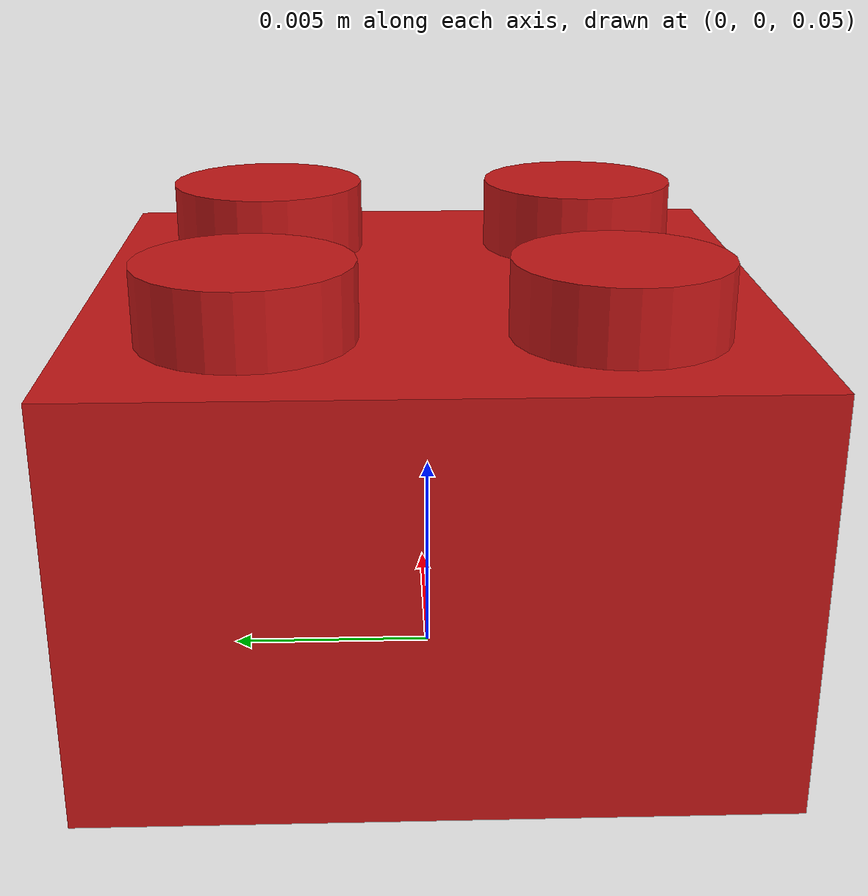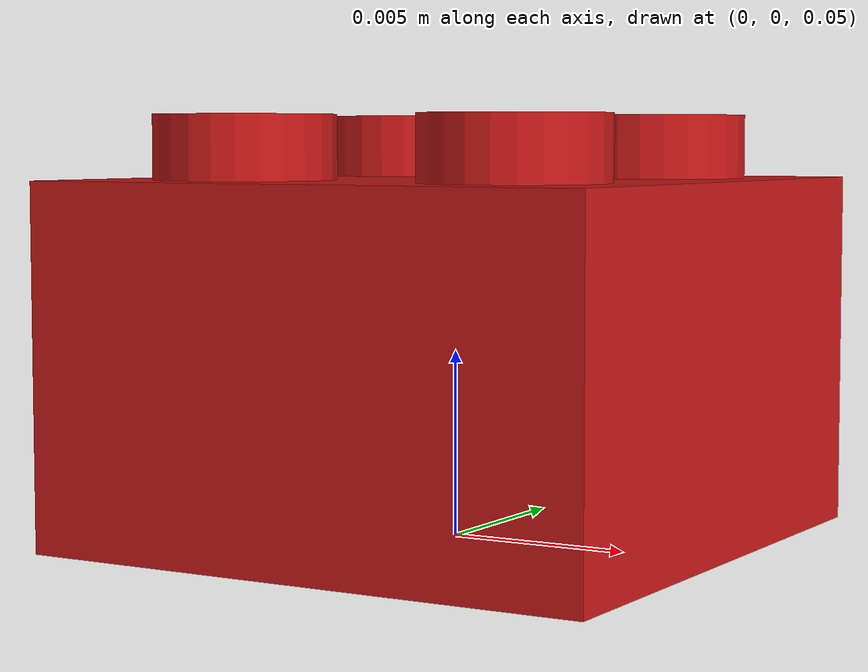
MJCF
<mujoco model="brick_2x2">
    <compiler inertiafromgeom="auto" angle="radian" />
    <option timestep="0.002" gravity="0 0 -9.81" integrator="implicitfast" cone="pyramidal" solver="Newton" iterations="80" ls_iterations="10" />
    <default>
        <default class="lego/stud">
            <geom contype="6" conaffinity="7" solref="0.003 1.0" solimp="0.97 0.995 0.001 0.5 4" friction="0.65 0.005 0.005" condim="4" />
        </default>
        <default class="lego/tube">
            <geom contype="4" conaffinity="4" solref="0.003 1.0" solimp="0.97 0.995 0.001 0.5 4" friction="0.65 0.005 0.005" condim="4" />
        </default>
        <default class="lego/brick_surface">
            <geom contype="2" conaffinity="3" solref="0.005 1.0" solimp="0.9 0.95 0.001 0.5 2" friction="0.4 0.005 0.002" condim="3" />
        </default>
        <default class="lego/baseplate">
            <geom contype="2" conaffinity="3" solref="0.005 1.0" solimp="0.9 0.95 0.001 0.5 2" friction="0.6 0.01 0.005" condim="3" />
        </default>
    </default>
    <worldbody>
        <light diffuse="0.8 0.8 0.8" pos="0 0 1" dir="0 0 -1" />
        <geom name="floor" type="plane" size="1 1 0.1" rgba="0.9 0.9 0.9 1" contype="1" conaffinity="1" />
        <body name="brick_2x2" pos="0 0 0.05">
            <freejoint name="brick_2x2_joint" />
            <inertial pos="0 0 0.0048" mass="0.001057" diaginertia="0.0000000301 0.0000000301 0.000000044" />
            <geom class="lego/brick_surface" name="brick_2x2_shell_top" type="box" size="0.0079 0.0079 0.0005" pos="0 0 0.0091" group="3" />
            <geom class="lego/brick_surface" name="brick_2x2_shell_lx" type="box" size="0.0006 0.0079 0.0048" pos="-0.0073 0 0.0048" group="3" />
            <geom class="lego/brick_surface" name="brick_2x2_shell_rx" type="box" size="0.0006 0.0079 0.0048" pos="0.0073 0 0.0048" group="3" />
            <geom class="lego/brick_surface" name="brick_2x2_shell_fy" type="box" size="0.0067 0.0006 0.0048" pos="0 0.0073 0.0048" group="3" />
            <geom class="lego/brick_surface" name="brick_2x2_shell_by" type="box" size="0.0067 0.0006 0.0048" pos="0 -0.0073 0.0048" group="3" />
            <geom name="brick_2x2_shell_vis" type="box" size="0.0079 0.0079 0.0048" pos="0 0 0.0048" group="0" contype="0" conaffinity="0" rgba="0.78 0.09 0.09 1" />
            <geom class="lego/stud" name="brick_2x2_stud_0_0" type="cylinder" size="0.00235 0.00085" pos="-0.004 -0.004 0.01045" group="3" />
            <geom name="brick_2x2_stud_0_0_vis" type="cylinder" size="0.0024 0.00085" pos="-0.004 -0.004 0.01045" group="0" contype="0" conaffinity="0" rgba="0.78 0.09 0.09 1" />
            <geom class="lego/stud" name="brick_2x2_stud_0_1" type="cylinder" size="0.00235 0.00085" pos="-0.004 0.004 0.01045" group="3" />
            <geom name="brick_2x2_stud_0_1_vis" type="cylinder" size="0.0024 0.00085" pos="-0.004 0.004 0.01045" group="0" contype="0" conaffinity="0" rgba="0.78 0.09 0.09 1" />
            <geom class="lego/stud" name="brick_2x2_stud_1_0" type="cylinder" size="0.00235 0.00085" pos="0.004 -0.004 0.01045" group="3" />
            <geom name="brick_2x2_stud_1_0_vis" type="cylinder" size="0.0024 0.00085" pos="0.004 -0.004 0.01045" group="0" contype="0" conaffinity="0" rgba="0.78 0.09 0.09 1" />
            <geom class="lego/stud" name="brick_2x2_stud_1_1" type="cylinder" size="0.00235 0.00085" pos="0.004 0.004 0.01045" group="3" />
            <geom name="brick_2x2_stud_1_1_vis" type="cylinder" size="0.0024 0.00085" pos="0.004 0.004 0.01045" group="0" contype="0" conaffinity="0" rgba="0.78 0.09 0.09 1" />
            <geom class="lego/tube" name="brick_2x2_tube_0_c0" type="capsule" size="0.00055" fromto="0.003 0 0 0.003 0 0.0017" group="3" />
            <geom class="lego/tube" name="brick_2x2_tube_0_c1" type="capsule" size="0.00055" fromto="0.002121 0.002121 0 0.002121 0.002121 0.0017" group="3" />
            <geom class="lego/tube" name="brick_2x2_tube_0_c2" type="capsule" size="0.00055" fromto="0 0.003 0 0 0.003 0.0017" group="3" />
            <geom class="lego/tube" name="brick_2x2_tube_0_c3" type="capsule" size="0.00055" fromto="-0.002121 0.002121 0 -0.002121 0.002121 0.0017" group="3" />
            <geom class="lego/tube" name="brick_2x2_tube_0_c4" type="capsule" size="0.00055" fromto="-0.003 0 0 -0.003 0 0.0017" group="3" />
            <geom class="lego/tube" name="brick_2x2_tube_0_c5" type="capsule" size="0.00055" fromto="-0.002121 -0.002121 0 -0.002121 -0.002121 0.0017" group="3" />
            <geom class="lego/tube" name="brick_2x2_tube_0_c6" type="capsule" size="0.00055" fromto="-0 -0.003 0 -0 -0.003 0.0017" group="3" />
            <geom class="lego/tube" name="brick_2x2_tube_0_c7" type="capsule" size="0.00055" fromto="0.002121 -0.002121 0 0.002121 -0.002121 0.0017" group="3" />
        </body>
    </worldbody>
</mujoco>
